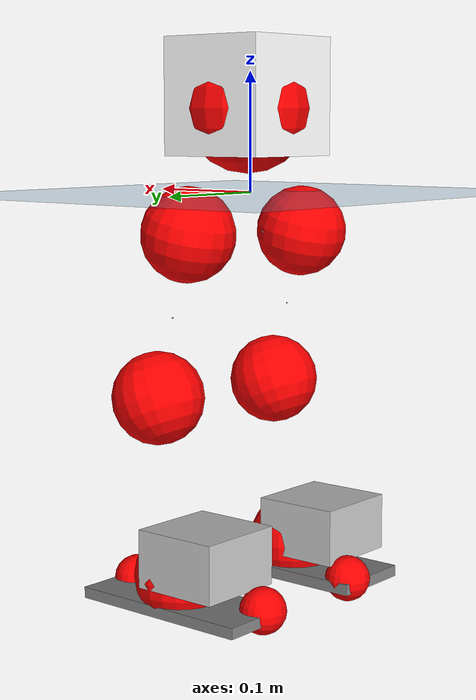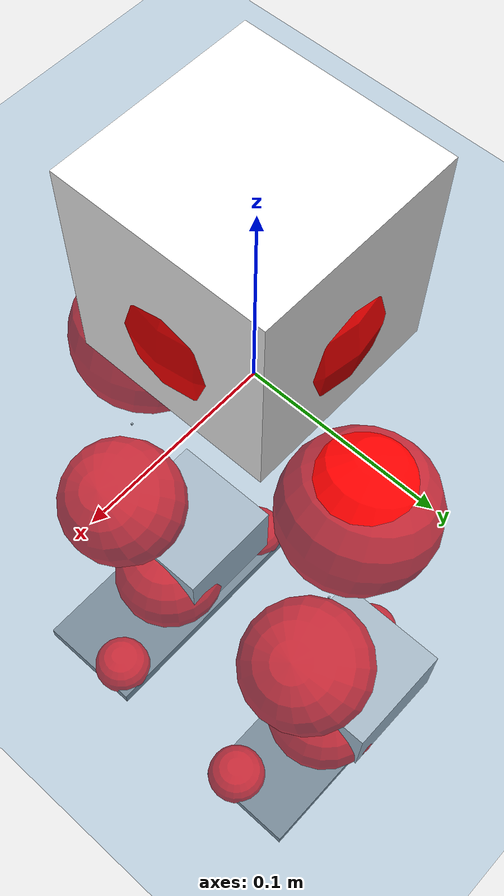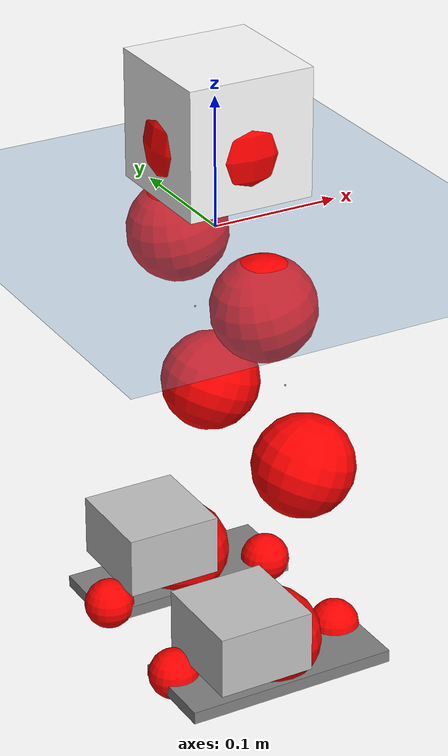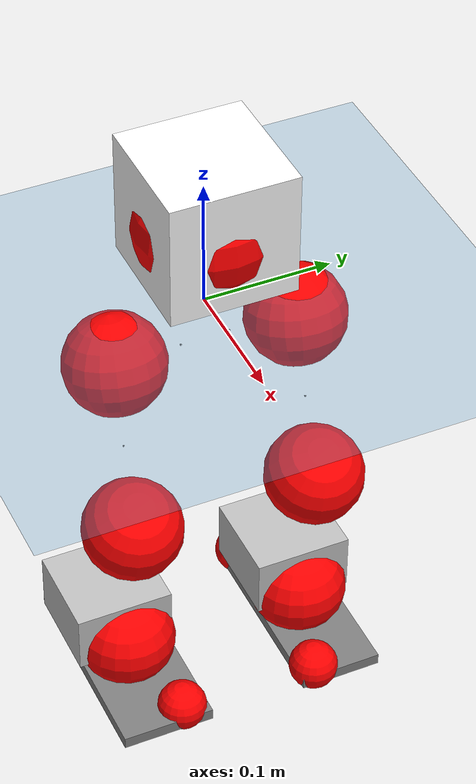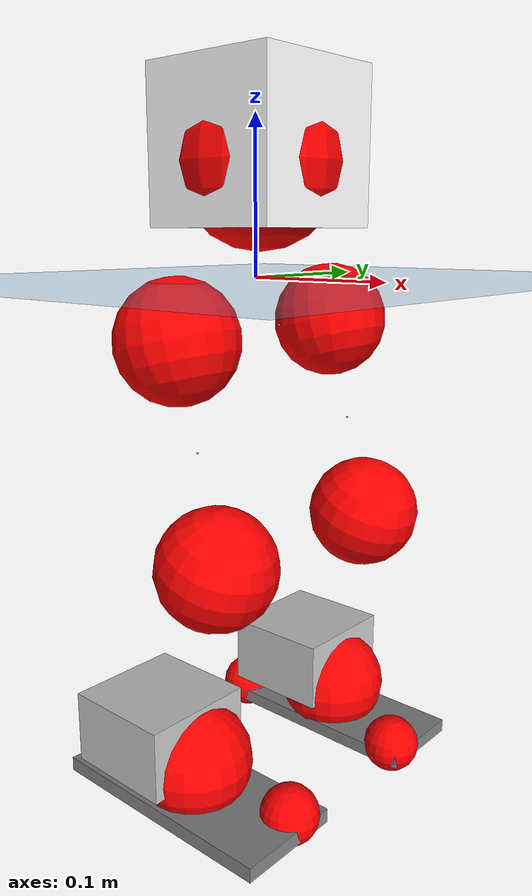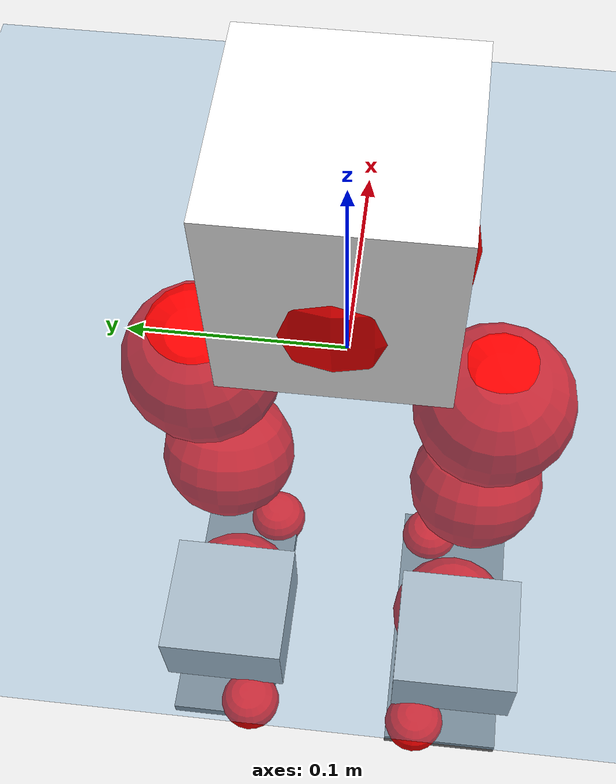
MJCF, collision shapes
<mujoco model="pi_12dof_release_v1">
  <compiler angle="radian" assetdir="assets" balanceinertia="true" inertiafromgeom="false"/>

  <option timestep="0.005" density="1.2" viscosity="2e-05"/>

  <size nkey="1"/>

  <visual>
    <quality shadowsize="8192"/>
    <map shadowclip="0.5"/>
  </visual>

  <default>
    <default class="/">
      <joint armature="0.01" damping="0.01" frictionloss="0.01"/>
      <geom contype="0" conaffinity="0" group="1" solref="-1000 -80"/>
      <site size="0.01 0.005 0.005" group="5"/>
      <general forcelimited="true" biastype="affine" gainprm="20" biasprm="0 -20 -0.5"/>
      <default class="foot">
        <geom size="0.0845 0.036 0.005" type="box" condim="6" group="4" priority="1" friction="0.9 0.2 0.2" solimp="0.015 1 0.005"/>
      </default>
      <default class="reward_collision_sphere">
        <geom group="5" rgba="1 0 0 1"/>
      </default>
    </default>
  </default>

  <asset>
    <texture type="skybox" colorspace="auto" name="//unnamed_texture_0" builtin="gradient" rgb1="0.95 0.95 0.95" rgb2="0.95 0.95 0.95" width="100" height="600"/>
    <texture type="2d" colorspace="auto" name="texplane" builtin="checker" rgb1="0.345 0.575 0.748" rgb2="0.345 0.575 0.748" markrgb="1 1 1" width="512" height="512"/>
    <material name="MatPlane" class="/" texture="texplane" texuniform="true" texrepeat="2 2" specular="0.9"/>
    <mesh name="baselink_1" class="/" file="baselink_1.STL"/>
    <mesh name="r_hip_pitch_link" class="/" file="r_hip_pitch_link.STL"/>
    <mesh name="r_hip_roll_link" class="/" file="r_hip_roll_link.STL"/>
    <mesh name="r_thigh_link" class="/" file="r_thigh_link.STL"/>
    <mesh name="r_calf_link" class="/" file="r_calf_link.STL"/>
    <mesh name="r_ankle_pitch_link" class="/" file="r_ankle_pitch_link.STL"/>
    <mesh name="r_ankle_roll_link" class="/" file="r_ankle_roll_link.STL"/>
    <mesh name="l_hip_pitch_link" class="/" file="l_hip_pitch_link.STL"/>
    <mesh name="l_hip_roll_link" class="/" file="l_hip_roll_link.STL"/>
    <mesh name="l_thigh_link" class="/" file="l_thigh_link.STL"/>
    <mesh name="l_calf_link" class="/" file="l_calf_link.STL"/>
    <mesh name="l_ankle_pitch_link" class="/" file="l_ankle_pitch_link.STL"/>
    <mesh name="l_ankle_roll_link" class="/" file="l_ankle_roll_link.STL"/>
  </asset>

  <worldbody>
    <geom name="floor" class="/" size="100 100 0.125" type="plane" group="0" material="MatPlane"/>
    <light name="toplight_shadow" class="/" pos="0 0 5" dir="0.0990148 0.0990148 -0.990148" type="directional" ambient="0.04 0.04 0.04" diffuse="0.55 0.55 0.55" specular="0.12 0.12 0.12"/>
    <light name="toplight_fill" class="/" pos="0 0 5" dir="0.0990148 0.0990148 -0.990148" type="directional" castshadow="false" ambient="0.04 0.04 0.04" diffuse="0.3 0.3 0.3" specular="0.08 0.08 0.08"/>
    <body name="trunk" pos="0.00270293 0.000789777 0.000471958" quat="1 -0.000268322 -3.39831e-05 -0.000157638">
      <inertial pos="0.00204856 0.000224462 0.0396533" quat="0.694243 0.000220726 0.0100049 0.719671" mass="2.02511" diaginertia="0.0128819 0.00566238 0.00387892"/>
      <joint name="//unnamed_joint_0" type="free"/>
      <geom name="//unnamed_geom_1" class="/" type="mesh" density="0" rgba="1 1 1 1" mesh="baselink_1"/>
      <geom name="//unnamed_geom_2" class="/" size="0.048824 0.048824 0.048824" pos="0 0 0.0789195" type="box" rgba="1 1 1 1"/>
      <geom name="//unnamed_geom_3" class="reward_collision_sphere" size="0.0537064" pos="0 0 0.0690546"/>
      <site name="imu" class="/" pos="-0.00170531 0.00527434 -0.0116466" size="0.0097648"/>
      <camera name="track" class="/" pos="0 -1.80115 0" quat="0.707107 0.707107 0 0" mode="trackcom"/>
      <camera name="ego_camera" class="/" pos="0.0781779 0 0.177569" quat="-0.5 -0.5 0.5 0.5"/>
      <body name="r_hip_pitch_link" pos="-0.000322879 -0.0200303 -0.0343886" quat="0.992205 0.000693875 -0.124612 0.00118444">
        <inertial pos="-0.00141984 -0.0523633 0.000233045" quat="-0.0194468 0.70603 -0.0283903 0.707346" mass="0.347074" diaginertia="0.000134666 5.59576e-05 7.83561e-05"/>
        <joint name="r_hip_pitch_joint" class="/" pos="0 0 0" axis="-0.0130788 -0.999914 0.000750747" stiffness="0.00165665" range="-1.70023 1.29992" armature="0.0098132" damping="0.0235009" frictionloss="0.00984555"/>
        <geom name="//unnamed_geom_4" class="/" type="mesh" density="0" rgba="0.75294 0.75294 0.75294 1" mesh="r_hip_pitch_link"/>
        <geom name="//unnamed_geom_5" class="/" size="0.00048824 0.00048824 0.00048824" type="box" rgba="0.75294 0.75294 0.75294 1"/>
        <body name="r_hip_roll_link" pos="-0.00268355 -0.0506604 -0.000981105" quat="1 -0.000685051 -0.000338051 -0.000371439">
          <inertial pos="-0.00095764 -0.00032347 -0.0623008" quat="0.708544 -0.0750608 -0.0873024 0.696211" mass="0.36005" diaginertia="0.000411699 0.000164087 0.000118913"/>
          <joint name="r_hip_roll_joint" class="/" pos="0 0 0" axis="-0.999893 -0.00762676 -0.0124892" range="-0.143393 0.552506" armature="0.0102028" damping="0" frictionloss="0.00843552"/>
          <geom name="//unnamed_geom_6" class="/" type="mesh" density="0" rgba="0.75294 0.75294 0.75294 1" mesh="r_hip_roll_link"/>
          <geom name="//unnamed_geom_7" class="/" size="0.00048824 0.00048824 0.00048824" type="box" rgba="0.75294 0.75294 0.75294 1"/>
          <geom name="//unnamed_geom_8" class="reward_collision_sphere" size="0.0390592"/>
          <body name="r_thigh_link" pos="0.0004908 -0.0018609 -0.067353" quat="0.999999 -0.000970859 0.000279511 0.000705571">
            <inertial pos="0.00197285 0.00115368 -0.046646" quat="0.730048 0.683363 0.00581918 0.00336239" mass="0.11108" diaginertia="0.000152691 5.77147e-05 5.37197e-05"/>
            <joint name="r_thigh_joint" class="/" pos="0 0 0" axis="0.00730023 -0.0123362 -0.999897" range="-0.248096 0.642806" armature="0.0097907" damping="0.000711865" frictionloss="0.00906948"/>
            <geom name="//unnamed_geom_9" class="/" type="mesh" density="0" rgba="0.75294 0.75294 0.75294 1" mesh="r_thigh_link"/>
            <geom name="//unnamed_geom_10" class="/" size="0.00048824 0.00048824 0.00048824" type="box" rgba="0.75294 0.75294 0.75294 1"/>
            <body name="r_calf_link" pos="-0.00206971 -0.000894821 -0.0716295" quat="0.947567 0.000159646 0.319556 -0.000238451">
              <inertial pos="0.00203353 -0.000621375 -0.0713557" quat="0.999935 -0.00892492 0.00614484 -0.00351918" mass="0.770114" diaginertia="0.00447729 0.00206794 0.000167817"/>
              <joint name="r_calf_joint" class="/" pos="0 0 0" axis="-0.00398392 -0.999982 -0.00442624" range="-1.63638 0.647343" armature="0.0105744" damping="0.0115407" frictionloss="0.0102828"/>
              <geom name="//unnamed_geom_11" class="/" type="mesh" density="0" rgba="0.75294 0.75294 0.75294 1" mesh="r_calf_link"/>
              <geom name="//unnamed_geom_12" class="/" size="0.00048824 0.00048824 0.00048824" type="box" rgba="0.75294 0.75294 0.75294 1"/>
              <geom name="//unnamed_geom_13" class="reward_collision_sphere" size="0.0390592"/>
              <body name="r_ankle_pitch_link" pos="-0.000489301 -0.00175361 -0.13605" quat="0.980063 -1.64822e-05 -0.198689 -3.69142e-05">
                <inertial pos="0.00318342 0.00497992 -0.00089022" quat="0.00319518 0.70707 -0.00153242 0.707134" mass="0.164066" diaginertia="0.000382645 0.000129993 0.000112373"/>
                <joint name="r_ankle_pitch_joint" class="/" pos="0 0 0" axis="0.000867037 -0.999895 0.0144985" stiffness="0.00668654" range="-1.27691 0.50454" armature="0.00853428" damping="0.0150629" frictionloss="0.00844448"/>
                <geom name="//unnamed_geom_14" class="/" type="mesh" density="0" rgba="0.75294 0.75294 0.75294 1" mesh="r_ankle_pitch_link"/>
                <geom name="//unnamed_geom_15" class="/" size="0.0380827 0.0390592 0.024412" type="box" rgba="0.75294 0.75294 0.75294 1"/>
                <body name="r_ankle_roll_link" pos="0.0800532 0.00454966 0.00279015" quat="0.999999 -0.00108392 -0.000255077 -4.43412e-05">
                  <inertial pos="-0.0230547 -0.00222163 -0.011583" quat="0.558392 0.435022 0.431979 0.558882" mass="0.472238" diaginertia="0.0014425 0.000640627 0.000275564"/>
                  <joint name="r_ankle_roll_joint" class="/" pos="0 0 0" axis="-0.999947 -0.00999103 0.00237525" range="-0.151434 0.172765" armature="0.00952054" damping="0.0191715" frictionloss="0.010288"/>
                  <geom name="//unnamed_geom_16" class="/" type="mesh" density="0" rgba="0.75294 0.75294 0.75294 1" mesh="r_ankle_roll_link"/>
                  <geom name="//unnamed_geom_17" class="/" type="mesh" rgba="0.75294 0.75294 0.75294 1" mesh="r_ankle_roll_link"/>
                  <geom name="right_foot" class="foot" size="0.0844695 0.0368446 0.00487113" pos="-0.053161 0 -0.0434057"/>
                  <geom name="//unnamed_geom_19" class="reward_collision_sphere" size="0.0390592" pos="-0.0521186 0 -0.0197299"/>
                  <geom name="//unnamed_geom_20" class="reward_collision_sphere" size="0.0195296" pos="0.0156356 0.0180115 -0.0394598"/>
                  <geom name="//unnamed_geom_21" class="reward_collision_sphere" size="0.0195296" pos="-0.125085 0.0180115 -0.0394598"/>
                  <site name="right_foot" class="foot" pos="-0.053161 0 -0.0434057" size="0.0097648"/>
                </body>
              </body>
            </body>
          </body>
        </body>
      </body>
      <body name="l_hip_pitch_link" pos="0.0012138 0.0175775 -0.032457" quat="0.992207 -0.000311738 -0.1246 0.000268188">
        <inertial pos="0.00334878 0.0468204 -0.000284797" quat="-0.0442813 0.708633 0.0176967 0.703964" mass="0.355332" diaginertia="0.000158609 6.20163e-05 9.0743e-05"/>
        <joint name="l_hip_pitch_joint" class="/" pos="0 0 0" axis="0.00553209 0.99998 0.00309467" range="-1.29865 1.7292" armature="0.00864989" damping="0.00608831" frictionloss="0.0105524"/>
        <geom name="//unnamed_geom_22" class="/" type="mesh" density="0" rgba="0.75294 0.75294 0.75294 1" mesh="l_hip_pitch_link"/>
        <geom name="//unnamed_geom_23" class="/" size="0.00048824 0.00048824 0.00048824" type="box" rgba="0.75294 0.75294 0.75294 1"/>
        <body name="l_hip_roll_link" pos="0.00304169 0.0517869 -0.000340139" quat="1 0.000319823 6.2287e-05 -0.000422162">
          <inertial pos="-0.00127048 0.00227068 -0.0603857" quat="0.707174 -0.0670321 -0.0811982 0.699156" mass="0.370106" diaginertia="0.000410226 0.000169438 0.000121021"/>
          <joint name="l_hip_roll_joint" class="/" pos="0 0 0" axis="-0.999977 0.00617634 -0.00286237" range="-0.4784 0.141743" armature="0.0112488" damping="0" frictionloss="0.00871373"/>
          <geom name="//unnamed_geom_24" class="/" type="mesh" density="0" rgba="0.75294 0.75294 0.75294 1" mesh="l_hip_roll_link"/>
          <geom name="//unnamed_geom_25" class="/" size="0.00048824 0.00048824 0.00048824" type="box" rgba="0.75294 0.75294 0.75294 1"/>
          <geom name="//unnamed_geom_26" class="reward_collision_sphere" size="0.0390592"/>
          <body name="l_thigh_link" pos="-0.0017157 0.0021408 -0.0703698" quat="0.999999 0.000960139 -5.15863e-05 0.000348468">
            <inertial pos="-0.000749882 -0.00142722 -0.0451628" quat="0.668473 0.743729 -0.00317608 0.000764173" mass="0.101826" diaginertia="0.000153443 5.53097e-05 5.45694e-05"/>
            <joint name="l_thigh_joint" class="/" pos="0 0 0" axis="-0.000219313 0.00120007 -0.999999" range="-0.65013 0.321159" armature="0.0100408" damping="0" frictionloss="0.00938066"/>
            <geom name="//unnamed_geom_27" class="/" type="mesh" density="0" rgba="0.75294 0.75294 0.75294 1" mesh="l_thigh_link"/>
            <geom name="//unnamed_geom_28" class="/" size="0.00048824 0.00048824 0.00048824" type="box" rgba="0.75294 0.75294 0.75294 1"/>
            <body name="l_calf_link" pos="-0.00280404 0.00237524 -0.0693432" quat="0.947649 -3.20077e-05 0.319315 -9.87122e-05">
              <inertial pos="0.0031468 0.0044744 -0.0699296" quat="0.999914 0.0125743 -0.00343509 -0.0017428" mass="0.769064" diaginertia="0.00450658 0.00216538 0.000170089"/>
              <joint name="l_calf_joint" class="/" pos="0 0 0" axis="0.00518016 0.999912 -0.0122098" range="-0.596528 1.66862" armature="0.00961827" damping="0.0037261" frictionloss="0.00839373"/>
              <geom name="//unnamed_geom_29" class="/" type="mesh" density="0" rgba="0.75294 0.75294 0.75294 1" mesh="l_calf_link"/>
              <geom name="//unnamed_geom_30" class="/" size="0.00048824 0.00048824 0.00048824" type="box" rgba="0.75294 0.75294 0.75294 1"/>
              <geom name="//unnamed_geom_31" class="reward_collision_sphere" size="0.0390592"/>
              <body name="l_ankle_pitch_link" pos="8.57255e-05 0.00147347 -0.136012" quat="0.980029 0.000105454 -0.198853 -0.000280106">
                <inertial pos="0.00497944 -0.000326957 -0.000460997" quat="0.00298448 0.711679 0.00741666 0.702459" mass="0.1661" diaginertia="0.000380554 0.000136881 0.000115339"/>
                <joint name="l_ankle_pitch_joint" class="/" pos="0 0 0" axis="-0.0025501 0.999996 -0.000899856" range="-0.456316 1.35346" armature="0.00990069" damping="0" frictionloss="0.00929396"/>
                <geom name="//unnamed_geom_32" class="/" type="mesh" density="0" rgba="0.75294 0.75294 0.75294 1" mesh="l_ankle_pitch_link"/>
                <geom name="//unnamed_geom_33" class="/" size="0.0380827 0.0390592 0.024412" type="box" rgba="0.75294 0.75294 0.75294 1"/>
                <body name="l_ankle_roll_link" pos="0.0783585 0.000853846 -0.000385041" quat="1 -9.05864e-05 8.27793e-05 -0.000257421">
                  <inertial pos="-0.028036 -0.00212668 -0.0118457" quat="0.559884 0.430374 0.435313 0.5584" mass="0.504901" diaginertia="0.00136141 0.000638509 0.000266229"/>
                  <joint name="l_ankle_roll_joint" class="/" pos="0 0 0" axis="-1 -7.31126e-05 5.31269e-05" stiffness="0.00997991" range="-0.168433 0.104881" armature="0.00922282" damping="0.0203061" frictionloss="0.0111013"/>
                  <geom name="//unnamed_geom_34" class="/" type="mesh" density="0" rgba="0.75294 0.75294 0.75294 1" mesh="l_ankle_roll_link"/>
                  <geom name="//unnamed_geom_35" class="/" type="mesh" rgba="0.75294 0.75294 0.75294 1" mesh="l_ankle_roll_link"/>
                  <geom name="left_foot" class="foot" size="0.081912 0.0327287 0.00466783" pos="-0.053161 0 -0.0434057"/>
                  <geom name="//unnamed_geom_37" class="reward_collision_sphere" size="0.0390592" pos="-0.0521186 0 -0.0197299"/>
                  <geom name="//unnamed_geom_38" class="reward_collision_sphere" size="0.0195296" pos="0.0156356 -0.0180115 -0.0394598"/>
                  <geom name="//unnamed_geom_39" class="reward_collision_sphere" size="0.0195296" pos="-0.125085 -0.0180115 -0.0394598"/>
                  <site name="left_foot" class="foot" pos="-0.053161 0 -0.0434057" size="0.0097648"/>
                </body>
              </body>
            </body>
          </body>
        </body>
      </body>
    </body>
  </worldbody>

  <contact>
    <pair class="/" geom1="floor" geom2="right_foot" name="//unnamed_contact_1"/>
    <pair class="/" geom1="floor" geom2="left_foot" name="//unnamed_contact_0"/>
  </contact>

  <actuator>
    <general name="r_hip_pitch_joint" class="/" joint="r_hip_pitch_joint" forcerange="-21.554 21.554" gainprm="19.186" biasprm="0 -19.186 -0.500801"/>
    <general name="r_hip_roll_joint" class="/" joint="r_hip_roll_joint" forcerange="-22.5403 22.5403" gainprm="19.186" biasprm="0 -19.186 -0.500801"/>
    <general name="r_thigh_joint" class="/" joint="r_thigh_joint" forcerange="-20.0072 20.0072" gainprm="19.186" biasprm="0 -19.186 -0.500801"/>
    <general name="r_calf_joint" class="/" joint="r_calf_joint" forcerange="-22.2252 22.2252" gainprm="19.186" biasprm="0 -19.186 -0.500801"/>
    <general name="r_ankle_pitch_joint" class="/" joint="r_ankle_pitch_joint" forcerange="-20.7885 20.7885" gainprm="19.186" biasprm="0 -19.186 -0.500801"/>
    <general name="r_ankle_roll_joint" class="/" joint="r_ankle_roll_joint" forcerange="-20.3988 20.3988" gainprm="19.186" biasprm="0 -19.186 -0.500801"/>
    <general name="l_hip_pitch_joint" class="/" joint="l_hip_pitch_joint" forcerange="-20.6306 20.6306" gainprm="19.186" biasprm="0 -19.186 -0.500801"/>
    <general name="l_hip_roll_joint" class="/" joint="l_hip_roll_joint" forcerange="-18.3671 18.3671" gainprm="19.186" biasprm="0 -19.186 -0.500801"/>
    <general name="l_thigh_joint" class="/" joint="l_thigh_joint" forcerange="-21.3693 21.3693" gainprm="19.186" biasprm="0 -19.186 -0.500801"/>
    <general name="l_calf_joint" class="/" joint="l_calf_joint" forcerange="-20.6364 20.6364" gainprm="19.186" biasprm="0 -19.186 -0.500801"/>
    <general name="l_ankle_pitch_joint" class="/" joint="l_ankle_pitch_joint" forcerange="-19.7492 19.7492" gainprm="19.186" biasprm="0 -19.186 -0.500801"/>
    <general name="l_ankle_roll_joint" class="/" joint="l_ankle_roll_joint" forcerange="-22.2247 22.2247" gainprm="19.186" biasprm="0 -19.186 -0.500801"/>
  </actuator>

  <sensor>
    <gyro site="imu" name="imu_angular_velocity"/>
    <velocimeter site="imu" name="imu_linear_velocity"/>
    <framelinvel objtype="site" objname="left_foot" name="left_foot_global_linear_velocity"/>
    <framelinvel objtype="site" objname="right_foot" name="right_foot_global_linear_velocity"/>
  </sensor>

  <keyframe>
    <key name="home" qpos="0 0 0.291 1 0 0 0 0.4 0 0 -0.8 0.4 0 -0.4 0 0 0.8 -0.4 0"/>
  </keyframe>
</mujoco>
